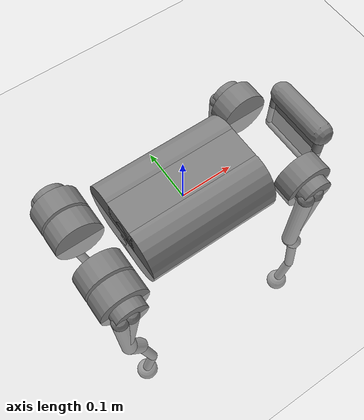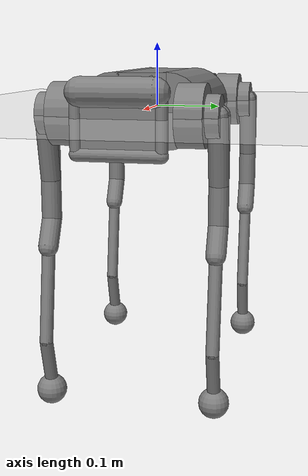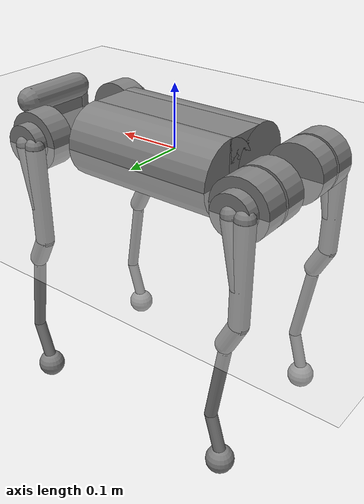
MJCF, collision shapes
<mujoco model="go1">
  <compiler angle="radian" meshdir="assets" autolimits="true"/>

  <option cone="pyramidal" impratio="100" timestep="0.005"/>

  <default>
    <geom solref="-1000 -80"/>
    <default class="go1">
      <geom friction="1.0" margin="0.001" condim="1"/>
      <joint armature="0.01" frictionloss="0.2"/>
      <default class="visual">
        <geom type="mesh" contype="0" conaffinity="0" group="2" material="dark"/>
      </default>
      <default class="collision">
        <geom group="3" type="capsule"/>
        <default class="hip_left1">
          <geom size="0.046 0.02" pos="0 0.045 0" quat="1 1 0 0" type="cylinder"/>
        </default>
        <default class="hip_left2">
          <geom size="0.031 0.02" pos="0 0.065 0" quat="1 1 0 0" type="cylinder"/>
        </default>
        <default class="hip_left3">
          <geom size="0.046 0.02" quat="1 1 0 0" type="cylinder"/>
        </default>
        <default class="hip_right1">
          <geom size="0.046 0.02" pos="0 -0.045 0" quat="1 1 0 0" type="cylinder"/>
        </default>
        <default class="hip_right2">
          <geom size="0.031 0.02" pos="0 -0.065 0" quat="1 1 0 0" type="cylinder"/>
        </default>
        <default class="hip_right3">
          <geom size="0.046 0.02" quat="1 1 0 0" type="cylinder"/>
        </default>
        <default class="thigh1">
          <geom size="0.015" fromto="-0.02 0 0 -0.02 0 -0.16"/>
        </default>
        <default class="thigh2">
          <geom size="0.015" fromto="0 0 0 -0.02 0 -0.1"/>
        </default>
        <default class="thigh3">
          <geom size="0.015" fromto="-0.02 0 -0.16 0 0 -0.2"/>
        </default>
        <default class="calf1">
          <geom size="0.01" fromto="0 0 0 0.02 0 -0.13"/>
        </default>
        <default class="calf2">
          <geom size="0.01" fromto="0.02 0 -0.13 0 0 -0.2"/>
        </default>
        <default class="foot">
          <geom type="sphere" size="0.023" pos="0 0 -0.213" priority="1" solimp="0.015 1 0.031" condim="6"
            friction="0.8 0.02 0.01"/>
        </default>
      </default>
    </default>
  </default>

  <asset>
    <texture type="skybox" builtin="gradient" rgb1=".3 .5 .7" rgb2="0 0 0" width="32" height="512"/>

    <texture name="texplane" type="2d" builtin="checker" rgb1="0.5 0.6 0.7" rgb2="0.2 0.3 0.4" width="100" height="100"/>
    <material name="MatPlane" reflectance="0.5" texture="texplane" texrepeat="1 1" texuniform="true"></material>

    <texture name="grid" type="2d" builtin="checker" rgb1="0.5 0.6 0.7" rgb2="0.2 0.3 0.4" width="512" height="512"/>
    <material name="grid" reflectance="0.5" texture="grid" texrepeat="1 1" texuniform="true"></material>

    <material name="dark" rgba="0.1 0.1 0.1 1"/>
    <mesh class="go1" file="trunk.stl"/>
    <mesh class="go1" file="hip.stl"/>
    <mesh class="go1" file="thigh_mirror.stl"/>
    <mesh class="go1" file="calf.stl"/>
    <mesh class="go1" file="thigh.stl"/>
  </asset>

  <worldbody>
    <geom name="floor" size="0 0 .125" type="plane" material="grid" condim="3" rgba="0.9 0.9 0.9 1"/>

    <light cutoff="100" diffuse="1 1 1" dir="-0 0 -1.3" directional="true" exponent="1" pos="0 0 1.3" specular=".1 .1 .1" castshadow="false"/>
    <light name="spotlight" mode="targetbodycom" target="trunk" pos="0 0 15"/>

    <body name="trunk" pos="0 0 0" childclass="go1">
      <camera name="track" mode="trackcom" pos="0 -2 0" xyaxes="1 0 0 0 0 1"/>
      <freejoint/>

      <inertial pos="0.0223 0.002 -0.0005" quat="-0.00342088 0.705204 0.000106698 0.708996" mass="5.204" diaginertia="0.0716565 0.0630105 0.0168101"/>

      <geom class="visual" mesh="trunk"/>
      <geom name="trunk_1" class="collision" size="0.125 0.04 0.057" type="box"/>
      <geom name="trunk_2" class="collision" quat="1 0 1 0" pos="0 -0.04 0" size="0.058 0.125" type="cylinder"/>
      <geom name="trunk_3" class="collision" quat="1 0 1 0" pos="0 +0.04 0" size="0.058 0.125" type="cylinder"/>
      <geom class="collision" pos="0.25 0 0" size="0.005 0.06 0.05" type="box"/>
      <geom class="collision" pos="0.25 0.06 -0.01" size="0.009 0.035"/>
      <geom class="collision" pos="0.25 -0.06 -0.01" size="0.009 0.035"/>
      <geom class="collision" pos="0.25 0 -0.05" size="0.01 0.06" quat="1 1 0 0"/>
      <geom class="collision" pos="0.255 0 0.0355" size="0.021 0.052" quat="1 1 0 0"/>

      <body name="FR_hip" pos="0.1881 -0.04675 0">
        <inertial pos="-0.0049166 0.00762615 -8.865e-05" quat="0.507341 0.514169 0.495027 0.482891" mass="0.68"
          diaginertia="0.000734064 0.000468438 0.000398719"/>
        <joint axis="1 0 0" damping="1" range="-0.863 0.863" name="FR_hip_joint"/>
        <geom class="visual" mesh="hip" quat="1 0 0 0"/>
        <geom class="hip_right1"/>
        <geom class="hip_right2"/>
        <body name="FR_thigh" pos="0 -0.08 0">
          <inertial pos="-0.00304722 0.019315 -0.0305004" quat="0.65243 -0.0272313 0.0775126 0.753383" mass="1.009"
            diaginertia="0.00478717 0.00460903 0.000709268"/>
          <joint axis="0 -1 0" range="-4.501 0.686" name="FR_thigh_joint"/>
          <geom class="visual" mesh="thigh_mirror"/>
          <geom class="thigh1"/>
          <geom class="thigh2"/>
          <geom class="thigh3"/>
          <body name="FR_calf" pos="0 0 -0.213">
            <inertial pos="0.00429862 0.000976676 -0.146197" quat="0.691246 0.00357467 0.00511118 0.722592"
              mass="0.195862" diaginertia="0.00149767 0.00148468 3.58427e-05"/>
            <joint axis="0 -1 0" range="0.888 2.818" name="FR_calf_joint"/>
            <geom class="visual" mesh="calf"/>
            <geom class="calf1" name="FR_calf1"/>
            <geom class="calf2"/>
            <geom name="FR_foot" class="foot"/>
          </body>
        </body>
      </body>
      <body name="FL_hip" pos="0.1881 0.04675 0">
        <inertial pos="-0.0049166 -0.00762615 -8.865e-05" quat="0.482891 0.495027 0.514169 0.507341" mass="0.68"
          diaginertia="0.000734064 0.000468438 0.000398719"/>
        <joint axis="1 0 0" damping="1" range="-0.863 0.863" name="FL_hip_joint"/>
        <geom class="visual" mesh="hip"/>
        <geom class="hip_left1"/>
        <geom class="hip_left2"/>
        <body name="FL_thigh" pos="0 0.08 0">
          <inertial pos="-0.00304722 -0.019315 -0.0305004" quat="0.753383 0.0775126 -0.0272313 0.65243" mass="1.009"
            diaginertia="0.00478717 0.00460903 0.000709268"/>
          <joint axis="0 1 0" range="-0.686 4.501" name="FL_thigh_joint"/>
          <geom class="visual" mesh="thigh"/>
          <geom class="thigh1"/>
          <geom class="thigh2"/>
          <geom class="thigh3"/>
          <body name="FL_calf" pos="0 0 -0.213">
            <inertial pos="0.00429862 0.000976676 -0.146197" quat="0.691246 0.00357467 0.00511118 0.722592"
              mass="0.195862" diaginertia="0.00149767 0.00148468 3.58427e-05"/>
            <joint axis="0 1 0" range="-2.818 -0.888" name="FL_calf_joint"/>
            <geom class="visual" mesh="calf"/>
            <geom class="calf1" name="FL_calf1"/>
            <geom class="calf2"/>
            <geom name="FL_foot" class="foot"/>
          </body>
        </body>
      </body>
      <body name="RR_hip" pos="-0.1881 -0.04675 0">
        <inertial pos="0.0049166 0.00762615 -8.865e-05" quat="0.495027 0.482891 0.507341 0.514169" mass="0.68"
          diaginertia="0.000734064 0.000468438 0.000398719"/>
        <joint axis="-1 0 0" damping="1" range="-0.863 0.863" name="RR_hip_joint"/>
        <geom class="visual" quat="0 0 0 -1" mesh="hip"/>
        <geom class="hip_right1"/>
        <geom class="hip_right2"/>
        <geom class="hip_right3"/>
        <body name="RR_thigh" pos="0 -0.08 0">
          <inertial pos="-0.00304722 0.019315 -0.0305004" quat="0.65243 -0.0272313 0.0775126 0.753383" mass="1.009"
            diaginertia="0.00478717 0.00460903 0.000709268"/>
          <joint axis="0 -1 0" range="-4.501 0.686" name="RR_thigh_joint"/>
          <geom class="visual" mesh="thigh_mirror"/>
          <geom class="thigh1"/>
          <geom class="thigh2"/>
          <geom class="thigh3"/>
          <body name="RR_calf" pos="0 0 -0.213">
            <inertial pos="0.00429862 0.000976676 -0.146197" quat="0.691246 0.00357467 0.00511118 0.722592"
              mass="0.195862" diaginertia="0.00149767 0.00148468 3.58427e-05"/>
            <joint axis="0 -1 0" range="0.888 2.818" name="RR_calf_joint"/>
            <geom class="visual" mesh="calf"/>
            <geom class="calf1" name="RR_calf1"/>
            <geom class="calf2"/>
            <geom name="RR_foot" class="foot"/>
          </body>
        </body>
      </body>
      <body name="RL_hip" pos="-0.1881 0.04675 0">
        <inertial pos="0.0049166 -0.00762615 -8.865e-05" quat="0.514169 0.507341 0.482891 0.495027" mass="0.68"
          diaginertia="0.000734064 0.000468438 0.000398719"/>
        <joint axis="-1 0 0" damping="1" range="-0.863 0.863" name="RL_hip_joint"/>
        <geom class="visual" quat="0 0 1 0" mesh="hip"/>
        <geom class="hip_left1"/>
        <geom class="hip_left2"/>
        <geom class="hip_left3"/>
        <body name="RL_thigh" pos="0 0.08 0">
          <inertial pos="-0.00304722 -0.019315 -0.0305004" quat="0.753383 0.0775126 -0.0272313 0.65243" mass="1.009"
            diaginertia="0.00478717 0.00460903 0.000709268"/>
          <joint axis="0 1 0" range="-0.686 4.501" name="RL_thigh_joint"/>
          <geom class="visual" mesh="thigh"/>
          <geom class="thigh1"/>
          <geom class="thigh2"/>
          <geom class="thigh3"/>
          <body name="RL_calf" pos="0 0 -0.213">
            <inertial pos="0.00429862 0.000976676 -0.146197" quat="0.691246 0.00357467 0.00511118 0.722592"
              mass="0.195862" diaginertia="0.00149767 0.00148468 3.58427e-05"/>
            <joint axis="0 1 0" range="-2.818 -0.888" name="RL_calf_joint"/>
            <geom class="visual" mesh="calf"/>
            <geom class="calf1" name="RL_calf1"/>
            <geom class="calf2"/>
            <geom name="RL_foot" class="foot"/>
          </body>
        </body>
      </body>
    </body>
  </worldbody>

  <actuator>
    <motor name="FR_hip" joint="FR_hip_joint" ctrlrange="-23.7 23.7"/>
    <motor name="FR_thigh" joint="FR_thigh_joint" ctrlrange="-23.7 23.7"/>
    <motor name="FR_calf" joint="FR_calf_joint" ctrlrange="-35.55 35.55"/>
    <motor name="FL_hip" joint="FL_hip_joint" ctrlrange="-23.7 23.7"/>
    <motor name="FL_thigh" joint="FL_thigh_joint" ctrlrange="-23.7 23.7"/>
    <motor name="FL_calf" joint="FL_calf_joint" ctrlrange="-35.55 35.55"/>
    <motor name="RR_hip" joint="RR_hip_joint" ctrlrange="-23.7 23.7"/>
    <motor name="RR_thigh" joint="RR_thigh_joint" ctrlrange="-23.7 23.7"/>
    <motor name="RR_calf" joint="RR_calf_joint" ctrlrange="-35.55 35.55"/>
    <motor name="RL_hip" joint="RL_hip_joint" ctrlrange="-23.7 23.7"/>
    <motor name="RL_thigh" joint="RL_thigh_joint" ctrlrange="-23.7 23.7"/>
    <motor name="RL_calf" joint="RL_calf_joint" ctrlrange="-35.55 35.55"/>
  </actuator>

  <keyframe>
    <key name="home" qpos="0 0 0.325 1 0 0 0 -0.1 -0.8 1.5 0.1 0.8 -1.5 0.1 -1.0 1.5 -0.1 1.0 -1.5"/>
  </keyframe>
</mujoco>
